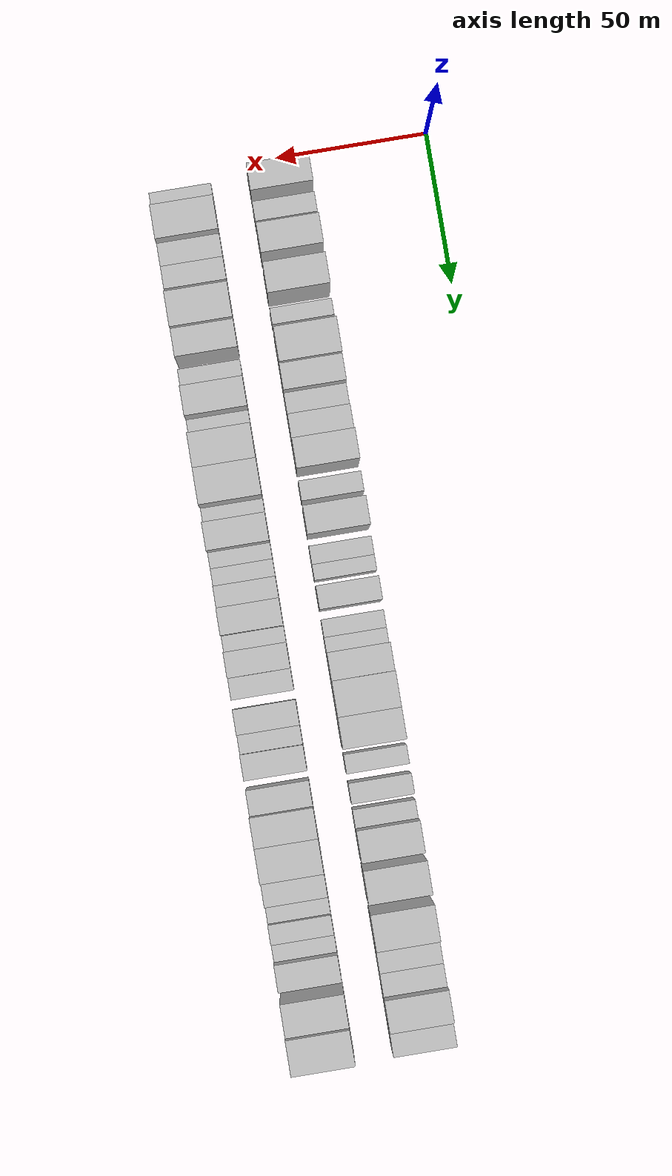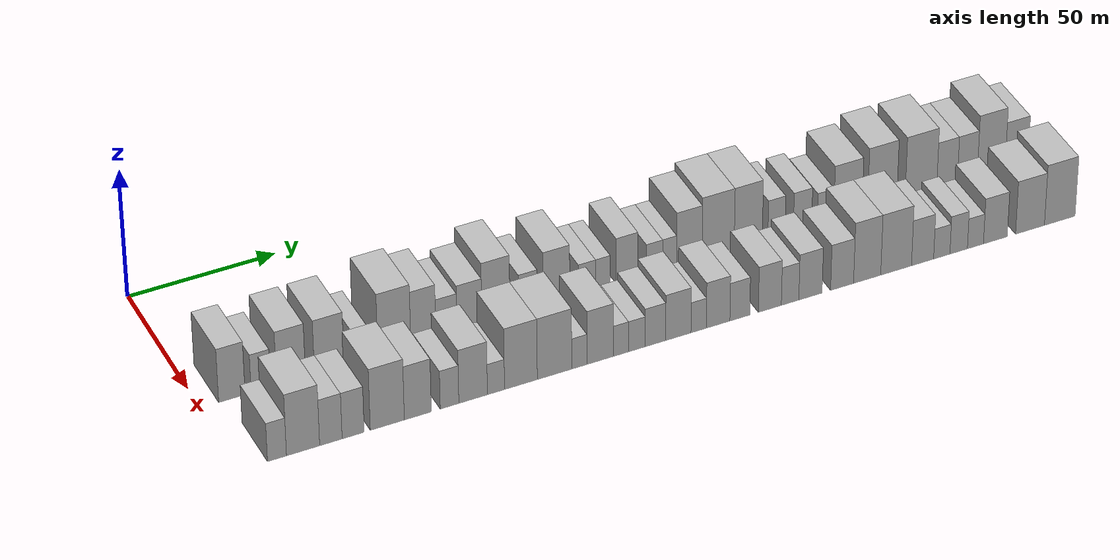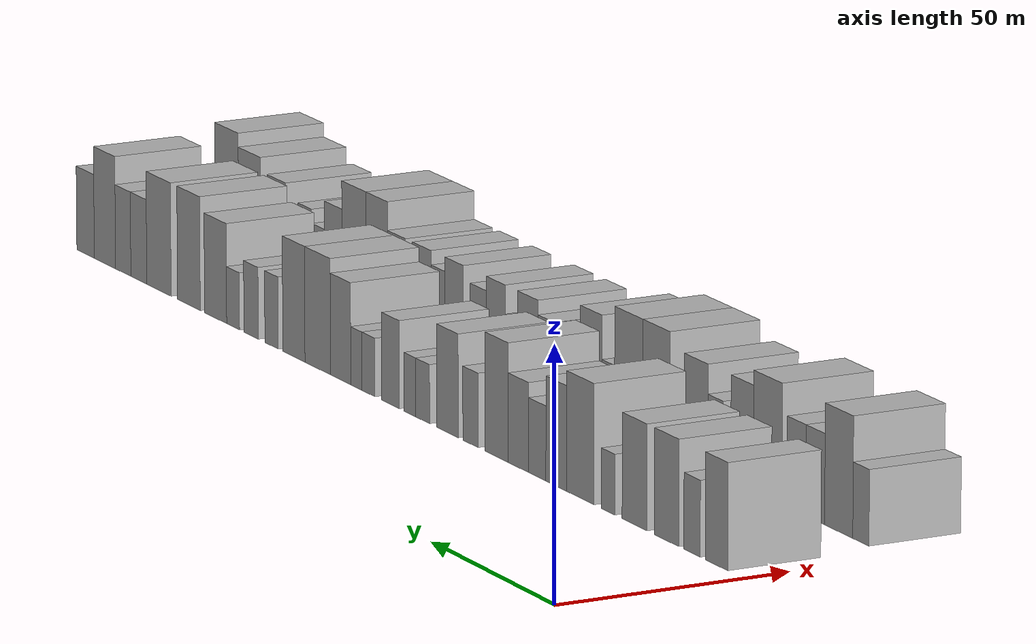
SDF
<sdf version="1.6">
 <world name="default">
  <model name="building_32">
   <static>1</static>
   <pose>50.0000 10.4703 0 0.000000 0.000000 0.000000</pose>
   <link name="link">
    <pose>0 0 10.50 0 0 0</pose>
    <collision name="collision"><geometry><box><size>20.0000 8.7726 21.0000</size></box></geometry></collision>
    <visual name="visual">
     <cast_shadows>0</cast_shadows>
     <geometry><box><size>20.0000 8.7726 21.0000</size></box></geometry>
     <material>
      <script>
       <uri>model://HANNAS_wall/materials/scripts</uri>
       <uri>model://HANNAS_wall/materials/textures</uri>
       <name>vrc/HANNAS_wall</name>
      </script>
     </material>
    </visual>
   </link>
  </model>
  <model name="building_33">
   <static>1</static>
   <pose>50.0000 20.0780 0 0.000000 0.000000 0.000000</pose>
   <link name="link">
    <pose>0 0 7.50 0 0 0</pose>
    <collision name="collision"><geometry><box><size>20.0000 6.4428 15.0000</size></box></geometry></collision>
    <visual name="visual">
     <cast_shadows>0</cast_shadows>
     <geometry><box><size>20.0000 6.4428 15.0000</size></box></geometry>
     <material>
      <script>
       <uri>model://HANNAS_wall/materials/scripts</uri>
       <uri>model://HANNAS_wall/materials/textures</uri>
       <name>vrc/HANNAS_wall</name>
      </script>
     </material>
    </visual>
   </link>
  </model>
  <model name="building_34">
   <static>1</static>
   <pose>50.0000 30.1253 0 0.000000 0.000000 0.000000</pose>
   <link name="link">
    <pose>0 0 10.50 0 0 0</pose>
    <collision name="collision"><geometry><box><size>20.0000 9.6518 21.0000</size></box></geometry></collision>
    <visual name="visual">
     <cast_shadows>0</cast_shadows>
     <geometry><box><size>20.0000 9.6518 21.0000</size></box></geometry>
     <material>
      <script>
       <uri>model://HANNAS_wall/materials/scripts</uri>
       <uri>model://HANNAS_wall/materials/textures</uri>
       <name>vrc/HANNAS_wall</name>
      </script>
     </material>
    </visual>
   </link>
  </model>
  <model name="building_35">
   <static>1</static>
   <pose>50.0000 42.9140 0 0.000000 0.000000 0.000000</pose>
   <link name="link">
    <pose>0 0 10.50 0 0 0</pose>
    <collision name="collision"><geometry><box><size>20.0000 9.9255 21.0000</size></box></geometry></collision>
    <visual name="visual">
     <cast_shadows>0</cast_shadows>
     <geometry><box><size>20.0000 9.9255 21.0000</size></box></geometry>
     <material>
      <script>
       <uri>model://HANNAS_wall/materials/scripts</uri>
       <uri>model://HANNAS_wall/materials/textures</uri>
       <name>vrc/HANNAS_wall</name>
      </script>
     </material>
    </visual>
   </link>
  </model>
  <model name="building_36">
   <static>1</static>
   <pose>50.0000 53.5680 0 0.000000 0.000000 0.000000</pose>
   <link name="link">
    <pose>0 0 6.00 0 0 0</pose>
    <collision name="collision"><geometry><box><size>20.0000 5.3825 12.0000</size></box></geometry></collision>
    <visual name="visual">
     <cast_shadows>0</cast_shadows>
     <geometry><box><size>20.0000 5.3825 12.0000</size></box></geometry>
     <material>
      <script>
       <uri>model://HANNAS_wall/materials/scripts</uri>
       <uri>model://HANNAS_wall/materials/textures</uri>
       <name>vrc/HANNAS_wall</name>
      </script>
     </material>
    </visual>
   </link>
  </model>
  <model name="building_37">
   <static>1</static>
   <pose>50.0000 64.8389 0 0.000000 0.000000 0.000000</pose>
   <link name="link">
    <pose>0 0 12.00 0 0 0</pose>
    <collision name="collision"><geometry><box><size>20.0000 11.1592 24.0000</size></box></geometry></collision>
    <visual name="visual">
     <cast_shadows>0</cast_shadows>
     <geometry><box><size>20.0000 11.1592 24.0000</size></box></geometry>
     <material>
      <script>
       <uri>model://HANNAS_wall/materials/scripts</uri>
       <uri>model://HANNAS_wall/materials/textures</uri>
       <name>vrc/HANNAS_wall</name>
      </script>
     </material>
    </visual>
   </link>
  </model>
  <model name="building_38">
   <static>1</static>
   <pose>50.0000 74.6822 0 0.000000 0.000000 0.000000</pose>
   <link name="link">
    <pose>0 0 10.50 0 0 0</pose>
    <collision name="collision"><geometry><box><size>20.0000 8.5273 21.0000</size></box></geometry></collision>
    <visual name="visual">
     <cast_shadows>0</cast_shadows>
     <geometry><box><size>20.0000 8.5273 21.0000</size></box></geometry>
     <material>
      <script>
       <uri>model://HANNAS_wall/materials/scripts</uri>
       <uri>model://HANNAS_wall/materials/textures</uri>
       <name>vrc/HANNAS_wall</name>
      </script>
     </material>
    </visual>
   </link>
  </model>
  <model name="building_39">
   <static>1</static>
   <pose>50.0000 82.5390 0 0.000000 0.000000 0.000000</pose>
   <link name="link">
    <pose>0 0 7.50 0 0 0</pose>
    <collision name="collision"><geometry><box><size>20.0000 7.1863 15.0000</size></box></geometry></collision>
    <visual name="visual">
     <cast_shadows>0</cast_shadows>
     <geometry><box><size>20.0000 7.1863 15.0000</size></box></geometry>
     <material>
      <script>
       <uri>model://HANNAS_wall/materials/scripts</uri>
       <uri>model://HANNAS_wall/materials/textures</uri>
       <name>vrc/HANNAS_wall</name>
      </script>
     </material>
    </visual>
   </link>
  </model>
  <model name="building_40">
   <static>1</static>
   <pose>50.0000 90.3806 0 0.000000 0.000000 0.000000</pose>
   <link name="link">
    <pose>0 0 9.00 0 0 0</pose>
    <collision name="collision"><geometry><box><size>20.0000 8.4969 18.0000</size></box></geometry></collision>
    <visual name="visual">
     <cast_shadows>0</cast_shadows>
     <geometry><box><size>20.0000 8.4969 18.0000</size></box></geometry>
     <material>
      <script>
       <uri>model://HANNAS_wall/materials/scripts</uri>
       <uri>model://HANNAS_wall/materials/textures</uri>
       <name>vrc/HANNAS_wall</name>
      </script>
     </material>
    </visual>
   </link>
  </model>
  <model name="building_41">
   <static>1</static>
   <pose>50.0000 99.4449 0 0.000000 0.000000 0.000000</pose>
   <link name="link">
    <pose>0 0 12.00 0 0 0</pose>
    <collision name="collision"><geometry><box><size>20.0000 9.6316 24.0000</size></box></geometry></collision>
    <visual name="visual">
     <cast_shadows>0</cast_shadows>
     <geometry><box><size>20.0000 9.6316 24.0000</size></box></geometry>
     <material>
      <script>
       <uri>model://HANNAS_wall/materials/scripts</uri>
       <uri>model://HANNAS_wall/materials/textures</uri>
       <name>vrc/HANNAS_wall</name>
      </script>
     </material>
    </visual>
   </link>
  </model>
  <model name="building_42">
   <static>1</static>
   <pose>50.0000 110.4633 0 0.000000 0.000000 0.000000</pose>
   <link name="link">
    <pose>0 0 7.50 0 0 0</pose>
    <collision name="collision"><geometry><box><size>20.0000 6.4053 15.0000</size></box></geometry></collision>
    <visual name="visual">
     <cast_shadows>0</cast_shadows>
     <geometry><box><size>20.0000 6.4053 15.0000</size></box></geometry>
     <material>
      <script>
       <uri>model://HANNAS_wall/materials/scripts</uri>
       <uri>model://HANNAS_wall/materials/textures</uri>
       <name>vrc/HANNAS_wall</name>
      </script>
     </material>
    </visual>
   </link>
  </model>
  <model name="building_43">
   <static>1</static>
   <pose>50.0000 120.2700 0 0.000000 0.000000 0.000000</pose>
   <link name="link">
    <pose>0 0 10.50 0 0 0</pose>
    <collision name="collision"><geometry><box><size>20.0000 9.2081 21.0000</size></box></geometry></collision>
    <visual name="visual">
     <cast_shadows>0</cast_shadows>
     <geometry><box><size>20.0000 9.2081 21.0000</size></box></geometry>
     <material>
      <script>
       <uri>model://HANNAS_wall/materials/scripts</uri>
       <uri>model://HANNAS_wall/materials/textures</uri>
       <name>vrc/HANNAS_wall</name>
      </script>
     </material>
    </visual>
   </link>
  </model>
  <model name="building_44">
   <static>1</static>
   <pose>50.0000 130.8555 0 0.000000 0.000000 0.000000</pose>
   <link name="link">
    <pose>0 0 6.00 0 0 0</pose>
    <collision name="collision"><geometry><box><size>20.0000 5.9628 12.0000</size></box></geometry></collision>
    <visual name="visual">
     <cast_shadows>0</cast_shadows>
     <geometry><box><size>20.0000 5.9628 12.0000</size></box></geometry>
     <material>
      <script>
       <uri>model://HANNAS_wall/materials/scripts</uri>
       <uri>model://HANNAS_wall/materials/textures</uri>
       <name>vrc/HANNAS_wall</name>
      </script>
     </material>
    </visual>
   </link>
  </model>
  <model name="building_45">
   <static>1</static>
   <pose>50.0000 136.3919 0 0.000000 0.000000 0.000000</pose>
   <link name="link">
    <pose>0 0 6.00 0 0 0</pose>
    <collision name="collision"><geometry><box><size>20.0000 5.1102 12.0000</size></box></geometry></collision>
    <visual name="visual">
     <cast_shadows>0</cast_shadows>
     <geometry><box><size>20.0000 5.1102 12.0000</size></box></geometry>
     <material>
      <script>
       <uri>model://HANNAS_wall/materials/scripts</uri>
       <uri>model://HANNAS_wall/materials/textures</uri>
       <name>vrc/HANNAS_wall</name>
      </script>
     </material>
    </visual>
   </link>
  </model>
  <model name="building_46">
   <static>1</static>
   <pose>50.0000 144.7280 0 0.000000 0.000000 0.000000</pose>
   <link name="link">
    <pose>0 0 9.00 0 0 0</pose>
    <collision name="collision"><geometry><box><size>20.0000 7.5619 18.0000</size></box></geometry></collision>
    <visual name="visual">
     <cast_shadows>0</cast_shadows>
     <geometry><box><size>20.0000 7.5619 18.0000</size></box></geometry>
     <material>
      <script>
       <uri>model://HANNAS_wall/materials/scripts</uri>
       <uri>model://HANNAS_wall/materials/textures</uri>
       <name>vrc/HANNAS_wall</name>
      </script>
     </material>
    </visual>
   </link>
  </model>
  <model name="building_47">
   <static>1</static>
   <pose>50.0000 154.3621 0 0.000000 0.000000 0.000000</pose>
   <link name="link">
    <pose>0 0 6.00 0 0 0</pose>
    <collision name="collision"><geometry><box><size>20.0000 5.7063 12.0000</size></box></geometry></collision>
    <visual name="visual">
     <cast_shadows>0</cast_shadows>
     <geometry><box><size>20.0000 5.7063 12.0000</size></box></geometry>
     <material>
      <script>
       <uri>model://HANNAS_wall/materials/scripts</uri>
       <uri>model://HANNAS_wall/materials/textures</uri>
       <name>vrc/HANNAS_wall</name>
      </script>
     </material>
    </visual>
   </link>
  </model>
  <model name="building_48">
   <static>1</static>
   <pose>50.0000 159.6737 0 0.000000 0.000000 0.000000</pose>
   <link name="link">
    <pose>0 0 6.00 0 0 0</pose>
    <collision name="collision"><geometry><box><size>20.0000 4.9170 12.0000</size></box></geometry></collision>
    <visual name="visual">
     <cast_shadows>0</cast_shadows>
     <geometry><box><size>20.0000 4.9170 12.0000</size></box></geometry>
     <material>
      <script>
       <uri>model://HANNAS_wall/materials/scripts</uri>
       <uri>model://HANNAS_wall/materials/textures</uri>
       <name>vrc/HANNAS_wall</name>
      </script>
     </material>
    </visual>
   </link>
  </model>
  <model name="building_49">
   <static>1</static>
   <pose>50.0000 166.6061 0 0.000000 0.000000 0.000000</pose>
   <link name="link">
    <pose>0 0 10.50 0 0 0</pose>
    <collision name="collision"><geometry><box><size>20.0000 8.9478 21.0000</size></box></geometry></collision>
    <visual name="visual">
     <cast_shadows>0</cast_shadows>
     <geometry><box><size>20.0000 8.9478 21.0000</size></box></geometry>
     <material>
      <script>
       <uri>model://HANNAS_wall/materials/scripts</uri>
       <uri>model://HANNAS_wall/materials/textures</uri>
       <name>vrc/HANNAS_wall</name>
      </script>
     </material>
    </visual>
   </link>
  </model>
  <model name="building_50">
   <static>1</static>
   <pose>50.0000 176.7668 0 0.000000 0.000000 0.000000</pose>
   <link name="link">
    <pose>0 0 12.00 0 0 0</pose>
    <collision name="collision"><geometry><box><size>20.0000 11.3736 24.0000</size></box></geometry></collision>
    <visual name="visual">
     <cast_shadows>0</cast_shadows>
     <geometry><box><size>20.0000 11.3736 24.0000</size></box></geometry>
     <material>
      <script>
       <uri>model://HANNAS_wall/materials/scripts</uri>
       <uri>model://HANNAS_wall/materials/textures</uri>
       <name>vrc/HANNAS_wall</name>
      </script>
     </material>
    </visual>
   </link>
  </model>
  <model name="building_51">
   <static>1</static>
   <pose>50.0000 187.4327 0 0.000000 0.000000 0.000000</pose>
   <link name="link">
    <pose>0 0 12.00 0 0 0</pose>
    <collision name="collision"><geometry><box><size>20.0000 9.9584 24.0000</size></box></geometry></collision>
    <visual name="visual">
     <cast_shadows>0</cast_shadows>
     <geometry><box><size>20.0000 9.9584 24.0000</size></box></geometry>
     <material>
      <script>
       <uri>model://HANNAS_wall/materials/scripts</uri>
       <uri>model://HANNAS_wall/materials/textures</uri>
       <name>vrc/HANNAS_wall</name>
      </script>
     </material>
    </visual>
   </link>
  </model>
  <model name="building_52">
   <static>1</static>
   <pose>50.0000 197.4578 0 0.000000 0.000000 0.000000</pose>
   <link name="link">
    <pose>0 0 7.50 0 0 0</pose>
    <collision name="collision"><geometry><box><size>20.0000 6.0918 15.0000</size></box></geometry></collision>
    <visual name="visual">
     <cast_shadows>0</cast_shadows>
     <geometry><box><size>20.0000 6.0918 15.0000</size></box></geometry>
     <material>
      <script>
       <uri>model://HANNAS_wall/materials/scripts</uri>
       <uri>model://HANNAS_wall/materials/textures</uri>
       <name>vrc/HANNAS_wall</name>
      </script>
     </material>
    </visual>
   </link>
  </model>
  <model name="building_53">
   <static>1</static>
   <pose>50.0000 206.7702 0 0.000000 0.000000 0.000000</pose>
   <link name="link">
    <pose>0 0 7.50 0 0 0</pose>
    <collision name="collision"><geometry><box><size>20.0000 6.5331 15.0000</size></box></geometry></collision>
    <visual name="visual">
     <cast_shadows>0</cast_shadows>
     <geometry><box><size>20.0000 6.5331 15.0000</size></box></geometry>
     <material>
      <script>
       <uri>model://HANNAS_wall/materials/scripts</uri>
       <uri>model://HANNAS_wall/materials/textures</uri>
       <name>vrc/HANNAS_wall</name>
      </script>
     </material>
    </visual>
   </link>
  </model>
  <model name="building_54">
   <static>1</static>
   <pose>50.0000 214.9954 0 0.000000 0.000000 0.000000</pose>
   <link name="link">
    <pose>0 0 6.00 0 0 0</pose>
    <collision name="collision"><geometry><box><size>20.0000 5.9171 12.0000</size></box></geometry></collision>
    <visual name="visual">
     <cast_shadows>0</cast_shadows>
     <geometry><box><size>20.0000 5.9171 12.0000</size></box></geometry>
     <material>
      <script>
       <uri>model://HANNAS_wall/materials/scripts</uri>
       <uri>model://HANNAS_wall/materials/textures</uri>
       <name>vrc/HANNAS_wall</name>
      </script>
     </material>
    </visual>
   </link>
  </model>
  <model name="building_55">
   <static>1</static>
   <pose>50.0000 223.0476 0 0.000000 0.000000 0.000000</pose>
   <link name="link">
    <pose>0 0 10.50 0 0 0</pose>
    <collision name="collision"><geometry><box><size>20.0000 10.1874 21.0000</size></box></geometry></collision>
    <visual name="visual">
     <cast_shadows>0</cast_shadows>
     <geometry><box><size>20.0000 10.1874 21.0000</size></box></geometry>
     <material>
      <script>
       <uri>model://HANNAS_wall/materials/scripts</uri>
       <uri>model://HANNAS_wall/materials/textures</uri>
       <name>vrc/HANNAS_wall</name>
      </script>
     </material>
    </visual>
   </link>
  </model>
  <model name="building_56">
   <static>1</static>
   <pose>50.0000 235.4307 0 0.000000 0.000000 0.000000</pose>
   <link name="link">
    <pose>0 0 12.00 0 0 0</pose>
    <collision name="collision"><geometry><box><size>20.0000 10.5788 24.0000</size></box></geometry></collision>
    <visual name="visual">
     <cast_shadows>0</cast_shadows>
     <geometry><box><size>20.0000 10.5788 24.0000</size></box></geometry>
     <material>
      <script>
       <uri>model://HANNAS_wall/materials/scripts</uri>
       <uri>model://HANNAS_wall/materials/textures</uri>
       <name>vrc/HANNAS_wall</name>
      </script>
     </material>
    </visual>
   </link>
  </model>
  <model name="building_57">
   <static>1</static>
   <pose>50.0000 249.4549 0 0.000000 0.000000 0.000000</pose>
   <link name="link">
    <pose>0 0 12.00 0 0 0</pose>
    <collision name="collision"><geometry><box><size>20.0000 11.4696 24.0000</size></box></geometry></collision>
    <visual name="visual">
     <cast_shadows>0</cast_shadows>
     <geometry><box><size>20.0000 11.4696 24.0000</size></box></geometry>
     <material>
      <script>
       <uri>model://HANNAS_wall/materials/scripts</uri>
       <uri>model://HANNAS_wall/materials/textures</uri>
       <name>vrc/HANNAS_wall</name>
      </script>
     </material>
    </visual>
   </link>
  </model>
  <model name="building_58">
   <static>1</static>
   <pose>50.0000 258.9614 0 0.000000 0.000000 0.000000</pose>
   <link name="link">
    <pose>0 0 9.00 0 0 0</pose>
    <collision name="collision"><geometry><box><size>20.0000 7.5433 18.0000</size></box></geometry></collision>
    <visual name="visual">
     <cast_shadows>0</cast_shadows>
     <geometry><box><size>20.0000 7.5433 18.0000</size></box></geometry>
     <material>
      <script>
       <uri>model://HANNAS_wall/materials/scripts</uri>
       <uri>model://HANNAS_wall/materials/textures</uri>
       <name>vrc/HANNAS_wall</name>
      </script>
     </material>
    </visual>
   </link>
  </model>
  <model name="building_59">
   <static>1</static>
   <pose>50.0000 266.3637 0 0.000000 0.000000 0.000000</pose>
   <link name="link">
    <pose>0 0 9.00 0 0 0</pose>
    <collision name="collision"><geometry><box><size>20.0000 7.2614 18.0000</size></box></geometry></collision>
    <visual name="visual">
     <cast_shadows>0</cast_shadows>
     <geometry><box><size>20.0000 7.2614 18.0000</size></box></geometry>
     <material>
      <script>
       <uri>model://HANNAS_wall/materials/scripts</uri>
       <uri>model://HANNAS_wall/materials/textures</uri>
       <name>vrc/HANNAS_wall</name>
      </script>
     </material>
    </visual>
   </link>
  </model>
  <model name="building_60">
   <static>1</static>
   <pose>50.0000 275.0978 0 0.000000 0.000000 0.000000</pose>
   <link name="link">
    <pose>0 0 12.00 0 0 0</pose>
    <collision name="collision"><geometry><box><size>20.0000 10.2068 24.0000</size></box></geometry></collision>
    <visual name="visual">
     <cast_shadows>0</cast_shadows>
     <geometry><box><size>20.0000 10.2068 24.0000</size></box></geometry>
     <material>
      <script>
       <uri>model://HANNAS_wall/materials/scripts</uri>
       <uri>model://HANNAS_wall/materials/textures</uri>
       <name>vrc/HANNAS_wall</name>
      </script>
     </material>
    </visual>
   </link>
  </model>
  <model name="building_61">
   <static>1</static>
   <pose>50.0000 284.4158 0 0.000000 0.000000 0.000000</pose>
   <link name="link">
    <pose>0 0 9.00 0 0 0</pose>
    <collision name="collision"><geometry><box><size>20.0000 8.4292 18.0000</size></box></geometry></collision>
    <visual name="visual">
     <cast_shadows>0</cast_shadows>
     <geometry><box><size>20.0000 8.4292 18.0000</size></box></geometry>
     <material>
      <script>
       <uri>model://HANNAS_wall/materials/scripts</uri>
       <uri>model://HANNAS_wall/materials/textures</uri>
       <name>vrc/HANNAS_wall</name>
      </script>
     </material>
    </visual>
   </link>
  </model>
  <model name="building_93">
   <static>1</static>
   <pose>82.0000 11.9959 0 0.000000 0.000000 0.000000</pose>
   <link name="link">
    <pose>0 0 7.50 0 0 0</pose>
    <collision name="collision"><geometry><box><size>20.0000 6.2276 15.0000</size></box></geometry></collision>
    <visual name="visual">
     <cast_shadows>0</cast_shadows>
     <geometry><box><size>20.0000 6.2276 15.0000</size></box></geometry>
     <material>
      <script>
       <uri>model://HANNAS_wall/materials/scripts</uri>
       <uri>model://HANNAS_wall/materials/textures</uri>
       <name>vrc/HANNAS_wall</name>
      </script>
     </material>
    </visual>
   </link>
  </model>
  <model name="building_94">
   <static>1</static>
   <pose>82.0000 20.5663 0 0.000000 0.000000 0.000000</pose>
   <link name="link">
    <pose>0 0 12.00 0 0 0</pose>
    <collision name="collision"><geometry><box><size>20.0000 10.9131 24.0000</size></box></geometry></collision>
    <visual name="visual">
     <cast_shadows>0</cast_shadows>
     <geometry><box><size>20.0000 10.9131 24.0000</size></box></geometry>
     <material>
      <script>
       <uri>model://HANNAS_wall/materials/scripts</uri>
       <uri>model://HANNAS_wall/materials/textures</uri>
       <name>vrc/HANNAS_wall</name>
      </script>
     </material>
    </visual>
   </link>
  </model>
  <model name="building_95">
   <static>1</static>
   <pose>82.0000 29.7328 0 0.000000 0.000000 0.000000</pose>
   <link name="link">
    <pose>0 0 9.00 0 0 0</pose>
    <collision name="collision"><geometry><box><size>20.0000 7.4199 18.0000</size></box></geometry></collision>
    <visual name="visual">
     <cast_shadows>0</cast_shadows>
     <geometry><box><size>20.0000 7.4199 18.0000</size></box></geometry>
     <material>
      <script>
       <uri>model://HANNAS_wall/materials/scripts</uri>
       <uri>model://HANNAS_wall/materials/textures</uri>
       <name>vrc/HANNAS_wall</name>
      </script>
     </material>
    </visual>
   </link>
  </model>
  <model name="building_96">
   <static>1</static>
   <pose>82.0000 37.1020 0 0.000000 0.000000 0.000000</pose>
   <link name="link">
    <pose>0 0 9.00 0 0 0</pose>
    <collision name="collision"><geometry><box><size>20.0000 7.3184 18.0000</size></box></geometry></collision>
    <visual name="visual">
     <cast_shadows>0</cast_shadows>
     <geometry><box><size>20.0000 7.3184 18.0000</size></box></geometry>
     <material>
      <script>
       <uri>model://HANNAS_wall/materials/scripts</uri>
       <uri>model://HANNAS_wall/materials/textures</uri>
       <name>vrc/HANNAS_wall</name>
      </script>
     </material>
    </visual>
   </link>
  </model>
  <model name="building_97">
   <static>1</static>
   <pose>82.0000 48.4289 0 0.000000 0.000000 0.000000</pose>
   <link name="link">
    <pose>0 0 12.00 0 0 0</pose>
    <collision name="collision"><geometry><box><size>20.0000 11.3353 24.0000</size></box></geometry></collision>
    <visual name="visual">
     <cast_shadows>0</cast_shadows>
     <geometry><box><size>20.0000 11.3353 24.0000</size></box></geometry>
     <material>
      <script>
       <uri>model://HANNAS_wall/materials/scripts</uri>
       <uri>model://HANNAS_wall/materials/textures</uri>
       <name>vrc/HANNAS_wall</name>
      </script>
     </material>
    </visual>
   </link>
  </model>
  <model name="building_98">
   <static>1</static>
   <pose>82.0000 58.5953 0 0.000000 0.000000 0.000000</pose>
   <link name="link">
    <pose>0 0 10.50 0 0 0</pose>
    <collision name="collision"><geometry><box><size>20.0000 8.9977 21.0000</size></box></geometry></collision>
    <visual name="visual">
     <cast_shadows>0</cast_shadows>
     <geometry><box><size>20.0000 8.9977 21.0000</size></box></geometry>
     <material>
      <script>
       <uri>model://HANNAS_wall/materials/scripts</uri>
       <uri>model://HANNAS_wall/materials/textures</uri>
       <name>vrc/HANNAS_wall</name>
      </script>
     </material>
    </visual>
   </link>
  </model>
  <model name="building_99">
   <static>1</static>
   <pose>82.0000 69.2098 0 0.000000 0.000000 0.000000</pose>
   <link name="link">
    <pose>0 0 7.50 0 0 0</pose>
    <collision name="collision"><geometry><box><size>20.0000 6.2313 15.0000</size></box></geometry></collision>
    <visual name="visual">
     <cast_shadows>0</cast_shadows>
     <geometry><box><size>20.0000 6.2313 15.0000</size></box></geometry>
     <material>
      <script>
       <uri>model://HANNAS_wall/materials/scripts</uri>
       <uri>model://HANNAS_wall/materials/textures</uri>
       <name>vrc/HANNAS_wall</name>
      </script>
     </material>
    </visual>
   </link>
  </model>
  <model name="building_100">
   <static>1</static>
   <pose>82.0000 77.1294 0 0.000000 0.000000 0.000000</pose>
   <link name="link">
    <pose>0 0 10.50 0 0 0</pose>
    <collision name="collision"><geometry><box><size>20.0000 9.6079 21.0000</size></box></geometry></collision>
    <visual name="visual">
     <cast_shadows>0</cast_shadows>
     <geometry><box><size>20.0000 9.6079 21.0000</size></box></geometry>
     <material>
      <script>
       <uri>model://HANNAS_wall/materials/scripts</uri>
       <uri>model://HANNAS_wall/materials/textures</uri>
       <name>vrc/HANNAS_wall</name>
      </script>
     </material>
    </visual>
   </link>
  </model>
  <model name="building_101">
   <static>1</static>
   <pose>82.0000 84.8223 0 0.000000 0.000000 0.000000</pose>
   <link name="link">
    <pose>0 0 6.00 0 0 0</pose>
    <collision name="collision"><geometry><box><size>20.0000 5.7777 12.0000</size></box></geometry></collision>
    <visual name="visual">
     <cast_shadows>0</cast_shadows>
     <geometry><box><size>20.0000 5.7777 12.0000</size></box></geometry>
     <material>
      <script>
       <uri>model://HANNAS_wall/materials/scripts</uri>
       <uri>model://HANNAS_wall/materials/textures</uri>
       <name>vrc/HANNAS_wall</name>
      </script>
     </material>
    </visual>
   </link>
  </model>
  <model name="building_102">
   <static>1</static>
   <pose>82.0000 93.2602 0 0.000000 0.000000 0.000000</pose>
   <link name="link">
    <pose>0 0 12.00 0 0 0</pose>
    <collision name="collision"><geometry><box><size>20.0000 11.0981 24.0000</size></box></geometry></collision>
    <visual name="visual">
     <cast_shadows>0</cast_shadows>
     <geometry><box><size>20.0000 11.0981 24.0000</size></box></geometry>
     <material>
      <script>
       <uri>model://HANNAS_wall/materials/scripts</uri>
       <uri>model://HANNAS_wall/materials/textures</uri>
       <name>vrc/HANNAS_wall</name>
      </script>
     </material>
    </visual>
   </link>
  </model>
  <model name="building_103">
   <static>1</static>
   <pose>82.0000 104.6594 0 0.000000 0.000000 0.000000</pose>
   <link name="link">
    <pose>0 0 12.00 0 0 0</pose>
    <collision name="collision"><geometry><box><size>20.0000 11.7004 24.0000</size></box></geometry></collision>
    <visual name="visual">
     <cast_shadows>0</cast_shadows>
     <geometry><box><size>20.0000 11.7004 24.0000</size></box></geometry>
     <material>
      <script>
       <uri>model://HANNAS_wall/materials/scripts</uri>
       <uri>model://HANNAS_wall/materials/textures</uri>
       <name>vrc/HANNAS_wall</name>
      </script>
     </material>
    </visual>
   </link>
  </model>
  <model name="building_104">
   <static>1</static>
   <pose>82.0000 113.1207 0 0.000000 0.000000 0.000000</pose>
   <link name="link">
    <pose>0 0 6.00 0 0 0</pose>
    <collision name="collision"><geometry><box><size>20.0000 5.2222 12.0000</size></box></geometry></collision>
    <visual name="visual">
     <cast_shadows>0</cast_shadows>
     <geometry><box><size>20.0000 5.2222 12.0000</size></box></geometry>
     <material>
      <script>
       <uri>model://HANNAS_wall/materials/scripts</uri>
       <uri>model://HANNAS_wall/materials/textures</uri>
       <name>vrc/HANNAS_wall</name>
      </script>
     </material>
    </visual>
   </link>
  </model>
  <model name="building_105">
   <static>1</static>
   <pose>82.0000 120.2468 0 0.000000 0.000000 0.000000</pose>
   <link name="link">
    <pose>0 0 10.50 0 0 0</pose>
    <collision name="collision"><geometry><box><size>20.0000 9.0300 21.0000</size></box></geometry></collision>
    <visual name="visual">
     <cast_shadows>0</cast_shadows>
     <geometry><box><size>20.0000 9.0300 21.0000</size></box></geometry>
     <material>
      <script>
       <uri>model://HANNAS_wall/materials/scripts</uri>
       <uri>model://HANNAS_wall/materials/textures</uri>
       <name>vrc/HANNAS_wall</name>
      </script>
     </material>
    </visual>
   </link>
  </model>
  <model name="building_106">
   <static>1</static>
   <pose>82.0000 127.3550 0 0.000000 0.000000 0.000000</pose>
   <link name="link">
    <pose>0 0 6.00 0 0 0</pose>
    <collision name="collision"><geometry><box><size>20.0000 5.1865 12.0000</size></box></geometry></collision>
    <visual name="visual">
     <cast_shadows>0</cast_shadows>
     <geometry><box><size>20.0000 5.1865 12.0000</size></box></geometry>
     <material>
      <script>
       <uri>model://HANNAS_wall/materials/scripts</uri>
       <uri>model://HANNAS_wall/materials/textures</uri>
       <name>vrc/HANNAS_wall</name>
      </script>
     </material>
    </visual>
   </link>
  </model>
  <model name="building_107">
   <static>1</static>
   <pose>82.0000 132.8092 0 0.000000 0.000000 0.000000</pose>
   <link name="link">
    <pose>0 0 6.00 0 0 0</pose>
    <collision name="collision"><geometry><box><size>20.0000 5.7220 12.0000</size></box></geometry></collision>
    <visual name="visual">
     <cast_shadows>0</cast_shadows>
     <geometry><box><size>20.0000 5.7220 12.0000</size></box></geometry>
     <material>
      <script>
       <uri>model://HANNAS_wall/materials/scripts</uri>
       <uri>model://HANNAS_wall/materials/textures</uri>
       <name>vrc/HANNAS_wall</name>
      </script>
     </material>
    </visual>
   </link>
  </model>
  <model name="building_108">
   <static>1</static>
   <pose>82.0000 139.1919 0 0.000000 0.000000 0.000000</pose>
   <link name="link">
    <pose>0 0 7.50 0 0 0</pose>
    <collision name="collision"><geometry><box><size>20.0000 7.0434 15.0000</size></box></geometry></collision>
    <visual name="visual">
     <cast_shadows>0</cast_shadows>
     <geometry><box><size>20.0000 7.0434 15.0000</size></box></geometry>
     <material>
      <script>
       <uri>model://HANNAS_wall/materials/scripts</uri>
       <uri>model://HANNAS_wall/materials/textures</uri>
       <name>vrc/HANNAS_wall</name>
      </script>
     </material>
    </visual>
   </link>
  </model>
  <model name="building_109">
   <static>1</static>
   <pose>82.0000 147.1036 0 0.000000 0.000000 0.000000</pose>
   <link name="link">
    <pose>0 0 9.00 0 0 0</pose>
    <collision name="collision"><geometry><box><size>20.0000 8.7800 18.0000</size></box></geometry></collision>
    <visual name="visual">
     <cast_shadows>0</cast_shadows>
     <geometry><box><size>20.0000 8.7800 18.0000</size></box></geometry>
     <material>
      <script>
       <uri>model://HANNAS_wall/materials/scripts</uri>
       <uri>model://HANNAS_wall/materials/textures</uri>
       <name>vrc/HANNAS_wall</name>
      </script>
     </material>
    </visual>
   </link>
  </model>
  <model name="building_110">
   <static>1</static>
   <pose>82.0000 154.1391 0 0.000000 0.000000 0.000000</pose>
   <link name="link">
    <pose>0 0 6.00 0 0 0</pose>
    <collision name="collision"><geometry><box><size>20.0000 5.2910 12.0000</size></box></geometry></collision>
    <visual name="visual">
     <cast_shadows>0</cast_shadows>
     <geometry><box><size>20.0000 5.2910 12.0000</size></box></geometry>
     <material>
      <script>
       <uri>model://HANNAS_wall/materials/scripts</uri>
       <uri>model://HANNAS_wall/materials/textures</uri>
       <name>vrc/HANNAS_wall</name>
      </script>
     </material>
    </visual>
   </link>
  </model>
  <model name="building_111">
   <static>1</static>
   <pose>82.0000 160.8971 0 0.000000 0.000000 0.000000</pose>
   <link name="link">
    <pose>0 0 9.00 0 0 0</pose>
    <collision name="collision"><geometry><box><size>20.0000 8.2250 18.0000</size></box></geometry></collision>
    <visual name="visual">
     <cast_shadows>0</cast_shadows>
     <geometry><box><size>20.0000 8.2250 18.0000</size></box></geometry>
     <material>
      <script>
       <uri>model://HANNAS_wall/materials/scripts</uri>
       <uri>model://HANNAS_wall/materials/textures</uri>
       <name>vrc/HANNAS_wall</name>
      </script>
     </material>
    </visual>
   </link>
  </model>
  <model name="building_112">
   <static>1</static>
   <pose>82.0000 168.4728 0 0.000000 0.000000 0.000000</pose>
   <link name="link">
    <pose>0 0 7.50 0 0 0</pose>
    <collision name="collision"><geometry><box><size>20.0000 6.9264 15.0000</size></box></geometry></collision>
    <visual name="visual">
     <cast_shadows>0</cast_shadows>
     <geometry><box><size>20.0000 6.9264 15.0000</size></box></geometry>
     <material>
      <script>
       <uri>model://HANNAS_wall/materials/scripts</uri>
       <uri>model://HANNAS_wall/materials/textures</uri>
       <name>vrc/HANNAS_wall</name>
      </script>
     </material>
    </visual>
   </link>
  </model>
  <model name="building_113">
   <static>1</static>
   <pose>82.0000 178.9605 0 0.000000 0.000000 0.000000</pose>
   <link name="link">
    <pose>0 0 9.00 0 0 0</pose>
    <collision name="collision"><geometry><box><size>20.0000 8.0489 18.0000</size></box></geometry></collision>
    <visual name="visual">
     <cast_shadows>0</cast_shadows>
     <geometry><box><size>20.0000 8.0489 18.0000</size></box></geometry>
     <material>
      <script>
       <uri>model://HANNAS_wall/materials/scripts</uri>
       <uri>model://HANNAS_wall/materials/textures</uri>
       <name>vrc/HANNAS_wall</name>
      </script>
     </material>
    </visual>
   </link>
  </model>
  <model name="building_114">
   <static>1</static>
   <pose>82.0000 186.0567 0 0.000000 0.000000 0.000000</pose>
   <link name="link">
    <pose>0 0 7.50 0 0 0</pose>
    <collision name="collision"><geometry><box><size>20.0000 6.1435 15.0000</size></box></geometry></collision>
    <visual name="visual">
     <cast_shadows>0</cast_shadows>
     <geometry><box><size>20.0000 6.1435 15.0000</size></box></geometry>
     <material>
      <script>
       <uri>model://HANNAS_wall/materials/scripts</uri>
       <uri>model://HANNAS_wall/materials/textures</uri>
       <name>vrc/HANNAS_wall</name>
      </script>
     </material>
    </visual>
   </link>
  </model>
  <model name="building_115">
   <static>1</static>
   <pose>82.0000 193.2281 0 0.000000 0.000000 0.000000</pose>
   <link name="link">
    <pose>0 0 9.00 0 0 0</pose>
    <collision name="collision"><geometry><box><size>20.0000 8.1993 18.0000</size></box></geometry></collision>
    <visual name="visual">
     <cast_shadows>0</cast_shadows>
     <geometry><box><size>20.0000 8.1993 18.0000</size></box></geometry>
     <material>
      <script>
       <uri>model://HANNAS_wall/materials/scripts</uri>
       <uri>model://HANNAS_wall/materials/textures</uri>
       <name>vrc/HANNAS_wall</name>
      </script>
     </material>
    </visual>
   </link>
  </model>
  <model name="building_116">
   <static>1</static>
   <pose>82.0000 204.3904 0 0.000000 0.000000 0.000000</pose>
   <link name="link">
    <pose>0 0 9.00 0 0 0</pose>
    <collision name="collision"><geometry><box><size>20.0000 8.1252 18.0000</size></box></geometry></collision>
    <visual name="visual">
     <cast_shadows>0</cast_shadows>
     <geometry><box><size>20.0000 8.1252 18.0000</size></box></geometry>
     <material>
      <script>
       <uri>model://HANNAS_wall/materials/scripts</uri>
       <uri>model://HANNAS_wall/materials/textures</uri>
       <name>vrc/HANNAS_wall</name>
      </script>
     </material>
    </visual>
   </link>
  </model>
  <model name="building_117">
   <static>1</static>
   <pose>82.0000 213.2703 0 0.000000 0.000000 0.000000</pose>
   <link name="link">
    <pose>0 0 12.00 0 0 0</pose>
    <collision name="collision"><geometry><box><size>20.0000 9.6346 24.0000</size></box></geometry></collision>
    <visual name="visual">
     <cast_shadows>0</cast_shadows>
     <geometry><box><size>20.0000 9.6346 24.0000</size></box></geometry>
     <material>
      <script>
       <uri>model://HANNAS_wall/materials/scripts</uri>
       <uri>model://HANNAS_wall/materials/textures</uri>
       <name>vrc/HANNAS_wall</name>
      </script>
     </material>
    </visual>
   </link>
  </model>
  <model name="building_118">
   <static>1</static>
   <pose>82.0000 223.5737 0 0.000000 0.000000 0.000000</pose>
   <link name="link">
    <pose>0 0 12.00 0 0 0</pose>
    <collision name="collision"><geometry><box><size>20.0000 10.9722 24.0000</size></box></geometry></collision>
    <visual name="visual">
     <cast_shadows>0</cast_shadows>
     <geometry><box><size>20.0000 10.9722 24.0000</size></box></geometry>
     <material>
      <script>
       <uri>model://HANNAS_wall/materials/scripts</uri>
       <uri>model://HANNAS_wall/materials/textures</uri>
       <name>vrc/HANNAS_wall</name>
      </script>
     </material>
    </visual>
   </link>
  </model>
  <model name="building_119">
   <static>1</static>
   <pose>82.0000 233.0105 0 0.000000 0.000000 0.000000</pose>
   <link name="link">
    <pose>0 0 9.00 0 0 0</pose>
    <collision name="collision"><geometry><box><size>20.0000 7.9014 18.0000</size></box></geometry></collision>
    <visual name="visual">
     <cast_shadows>0</cast_shadows>
     <geometry><box><size>20.0000 7.9014 18.0000</size></box></geometry>
     <material>
      <script>
       <uri>model://HANNAS_wall/materials/scripts</uri>
       <uri>model://HANNAS_wall/materials/textures</uri>
       <name>vrc/HANNAS_wall</name>
      </script>
     </material>
    </visual>
   </link>
  </model>
  <model name="building_120">
   <static>1</static>
   <pose>82.0000 239.8878 0 0.000000 0.000000 0.000000</pose>
   <link name="link">
    <pose>0 0 6.00 0 0 0</pose>
    <collision name="collision"><geometry><box><size>20.0000 5.8531 12.0000</size></box></geometry></collision>
    <visual name="visual">
     <cast_shadows>0</cast_shadows>
     <geometry><box><size>20.0000 5.8531 12.0000</size></box></geometry>
     <material>
      <script>
       <uri>model://HANNAS_wall/materials/scripts</uri>
       <uri>model://HANNAS_wall/materials/textures</uri>
       <name>vrc/HANNAS_wall</name>
      </script>
     </material>
    </visual>
   </link>
  </model>
  <model name="building_121">
   <static>1</static>
   <pose>82.0000 245.9578 0 0.000000 0.000000 0.000000</pose>
   <link name="link">
    <pose>0 0 7.50 0 0 0</pose>
    <collision name="collision"><geometry><box><size>20.0000 6.2870 15.0000</size></box></geometry></collision>
    <visual name="visual">
     <cast_shadows>0</cast_shadows>
     <geometry><box><size>20.0000 6.2870 15.0000</size></box></geometry>
     <material>
      <script>
       <uri>model://HANNAS_wall/materials/scripts</uri>
       <uri>model://HANNAS_wall/materials/textures</uri>
       <name>vrc/HANNAS_wall</name>
      </script>
     </material>
    </visual>
   </link>
  </model>
  <model name="building_122">
   <static>1</static>
   <pose>82.0000 251.9900 0 0.000000 0.000000 0.000000</pose>
   <link name="link">
    <pose>0 0 6.00 0 0 0</pose>
    <collision name="collision"><geometry><box><size>20.0000 5.7774 12.0000</size></box></geometry></collision>
    <visual name="visual">
     <cast_shadows>0</cast_shadows>
     <geometry><box><size>20.0000 5.7774 12.0000</size></box></geometry>
     <material>
      <script>
       <uri>model://HANNAS_wall/materials/scripts</uri>
       <uri>model://HANNAS_wall/materials/textures</uri>
       <name>vrc/HANNAS_wall</name>
      </script>
     </material>
    </visual>
   </link>
  </model>
  <model name="building_123">
   <static>1</static>
   <pose>82.0000 259.1830 0 0.000000 0.000000 0.000000</pose>
   <link name="link">
    <pose>0 0 9.00 0 0 0</pose>
    <collision name="collision"><geometry><box><size>20.0000 8.6087 18.0000</size></box></geometry></collision>
    <visual name="visual">
     <cast_shadows>0</cast_shadows>
     <geometry><box><size>20.0000 8.6087 18.0000</size></box></geometry>
     <material>
      <script>
       <uri>model://HANNAS_wall/materials/scripts</uri>
       <uri>model://HANNAS_wall/materials/textures</uri>
       <name>vrc/HANNAS_wall</name>
      </script>
     </material>
    </visual>
   </link>
  </model>
  <model name="building_124">
   <static>1</static>
   <pose>82.0000 271.7262 0 0.000000 0.000000 0.000000</pose>
   <link name="link">
    <pose>0 0 10.50 0 0 0</pose>
    <collision name="collision"><geometry><box><size>20.0000 10.4776 21.0000</size></box></geometry></collision>
    <visual name="visual">
     <cast_shadows>0</cast_shadows>
     <geometry><box><size>20.0000 10.4776 21.0000</size></box></geometry>
     <material>
      <script>
       <uri>model://HANNAS_wall/materials/scripts</uri>
       <uri>model://HANNAS_wall/materials/textures</uri>
       <name>vrc/HANNAS_wall</name>
      </script>
     </material>
    </visual>
   </link>
  </model>
  <model name="building_125">
   <static>1</static>
   <pose>82.0000 282.5414 0 0.000000 0.000000 0.000000</pose>
   <link name="link">
    <pose>0 0 12.00 0 0 0</pose>
    <collision name="collision"><geometry><box><size>20.0000 11.1529 24.0000</size></box></geometry></collision>
    <visual name="visual">
     <cast_shadows>0</cast_shadows>
     <geometry><box><size>20.0000 11.1529 24.0000</size></box></geometry>
     <material>
      <script>
       <uri>model://HANNAS_wall/materials/scripts</uri>
       <uri>model://HANNAS_wall/materials/textures</uri>
       <name>vrc/HANNAS_wall</name>
      </script>
     </material>
    </visual>
   </link>
  </model>
 </world>
</sdf>
